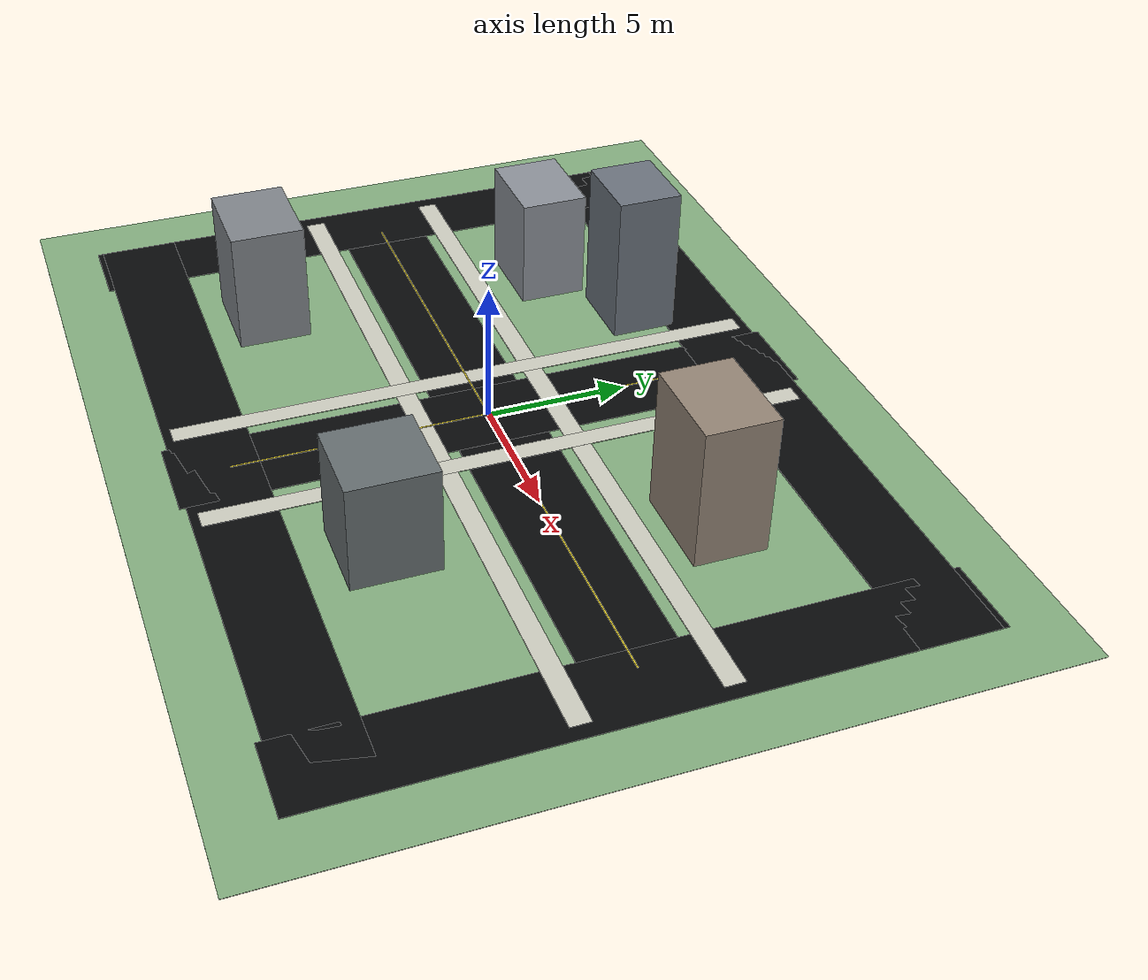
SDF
<sdf version="1.10">
 <world name="city_people">
  <physics name="fast_visual_physics" type="ignored">
   <max_step_size>0.005</max_step_size>
   <real_time_factor>1.0</real_time_factor>
  </physics>
  <plugin filename="gz-sim-physics-system" name="gz::sim::systems::Physics"/>
  <plugin filename="gz-sim-sensors-system" name="gz::sim::systems::Sensors">
   <render_engine>ogre2</render_engine>
  </plugin>
  <plugin filename="gz-sim-user-commands-system" name="gz::sim::systems::UserCommands"/>
  <plugin filename="gz-sim-scene-broadcaster-system" name="gz::sim::systems::SceneBroadcaster"/>
  <scene>
   <ambient>0.96 0.96 0.92 1</ambient>
   <background>0.82 0.90 1.0 1</background>
   <shadows>true</shadows>
  </scene>
  <light name="sun" type="directional">
   <pose>0 0 24 0.45 0.25 0</pose>
   <diffuse>1.0 1.0 0.95 1</diffuse>
   <specular>0.55 0.55 0.50 1</specular>
   <direction>-0.25 0.18 -0.95</direction>
  </light>
  <model name="visual_ground">
   <static>true</static>
   <link name="link">
    <visual name="ground_visual">
     <geometry><box><size>34 26 0.02</size></box></geometry>
     <pose>0 0 -0.01 0 0 0</pose>
     <material><diffuse>0.52 0.68 0.50 1</diffuse></material>
    </visual>
   </link>
  </model>
  <model name="visual_city_block">
   <static>true</static>
   <link name="link">
    <visual name="road_main">
     <pose>0 0 0.005 0 0 0</pose>
     <geometry><box><size>30 3.2 0.03</size></box></geometry>
     <material><diffuse>0.035 0.038 0.042 1</diffuse></material>
    </visual>
    <visual name="road_cross">
     <pose>0 0 0.006 0 0 0</pose>
     <geometry><box><size>3.2 22 0.035</size></box></geometry>
     <material><diffuse>0.035 0.038 0.042 1</diffuse></material>
    </visual>
    <visual name="road_outer_top">
     <pose>0 9.4 0.006 0 0 0</pose>
     <geometry><box><size>30 2.8 0.035</size></box></geometry>
     <material><diffuse>0.035 0.038 0.042 1</diffuse></material>
    </visual>
    <visual name="road_outer_bottom">
     <pose>0 -9.4 0.006 0 0 0</pose>
     <geometry><box><size>30 2.8 0.035</size></box></geometry>
     <material><diffuse>0.035 0.038 0.042 1</diffuse></material>
    </visual>
    <visual name="road_outer_left">
     <pose>-13.6 0 0.006 0 0 0</pose>
     <geometry><box><size>2.8 22 0.035</size></box></geometry>
     <material><diffuse>0.035 0.038 0.042 1</diffuse></material>
    </visual>
    <visual name="road_outer_right">
     <pose>13.6 0 0.006 0 0 0</pose>
     <geometry><box><size>2.8 22 0.035</size></box></geometry>
     <material><diffuse>0.035 0.038 0.042 1</diffuse></material>
    </visual>
    <visual name="lane_main">
     <pose>0 0 0.04 0 0 0</pose>
     <geometry><box><size>26 0.055 0.01</size></box></geometry>
     <material><diffuse>0.92 0.84 0.2 1</diffuse></material>
    </visual>
    <visual name="lane_cross">
     <pose>0 0 0.041 0 0 0</pose>
     <geometry><box><size>0.055 18 0.01</size></box></geometry>
     <material><diffuse>0.92 0.84 0.2 1</diffuse></material>
    </visual>
    <visual name="sidewalk_north">
     <pose>0 2.35 0.02 0 0 0</pose>
     <geometry><box><size>29 0.70 0.025</size></box></geometry>
     <material><diffuse>0.80 0.80 0.75 1</diffuse></material>
    </visual>
    <visual name="sidewalk_south">
     <pose>0 -2.35 0.02 0 0 0</pose>
     <geometry><box><size>29 0.70 0.025</size></box></geometry>
     <material><diffuse>0.80 0.80 0.75 1</diffuse></material>
    </visual>
    <visual name="sidewalk_east">
     <pose>2.35 0 0.021 0 0 0</pose>
     <geometry><box><size>0.70 21 0.025</size></box></geometry>
     <material><diffuse>0.80 0.80 0.75 1</diffuse></material>
    </visual>
    <visual name="sidewalk_west">
     <pose>-2.35 0 0.021 0 0 0</pose>
     <geometry><box><size>0.70 21 0.025</size></box></geometry>
     <material><diffuse>0.80 0.80 0.75 1</diffuse></material>
    </visual>
    <visual name="building_a">
     <pose>-8 4.8 2.0 0 0 0</pose>
     <geometry><box><size>3.2 2.4 4.0</size></box></geometry>
     <material>
      <diffuse>0.55 0.57 0.60 1</diffuse>
      <pbr><metal><albedo_map>model://textured_person/materials/textures/facade_a.png</albedo_map></metal></pbr>
     </material>
    </visual>
    <visual name="building_b">
     <pose>-4.5 7.1 2.7 0 0 0</pose>
     <geometry><box><size>2.8 2.3 5.4</size></box></geometry>
     <material>
      <diffuse>0.42 0.45 0.49 1</diffuse>
      <pbr><metal><albedo_map>model://textured_person/materials/textures/facade_b.png</albedo_map></metal></pbr>
     </material>
    </visual>
    <visual name="building_c">
     <pose>7.8 4.6 2.5 0 0 0</pose>
     <geometry><box><size>3.4 2.5 5.0</size></box></geometry>
     <material>
      <diffuse>0.58 0.52 0.46 1</diffuse>
      <pbr><metal><albedo_map>model://textured_person/materials/textures/facade_a.png</albedo_map></metal></pbr>
     </material>
    </visual>
    <visual name="building_d">
     <pose>5.6 -5.4 1.9 0 0 0</pose>
     <geometry><box><size>3.0 3.0 3.8</size></box></geometry>
     <material>
      <diffuse>0.40 0.43 0.44 1</diffuse>
      <pbr><metal><albedo_map>model://textured_person/materials/textures/facade_b.png</albedo_map></metal></pbr>
     </material>
    </visual>
    <visual name="building_e">
     <pose>-8.5 -5.8 2.2 0 0 0</pose>
     <geometry><box><size>3.3 2.6 4.4</size></box></geometry>
     <material>
      <diffuse>0.50 0.52 0.54 1</diffuse>
      <pbr><metal><albedo_map>model://textured_person/materials/textures/facade_a.png</albedo_map></metal></pbr>
     </material>
    </visual>
   </link>
  </model>
 </world>
</sdf>
